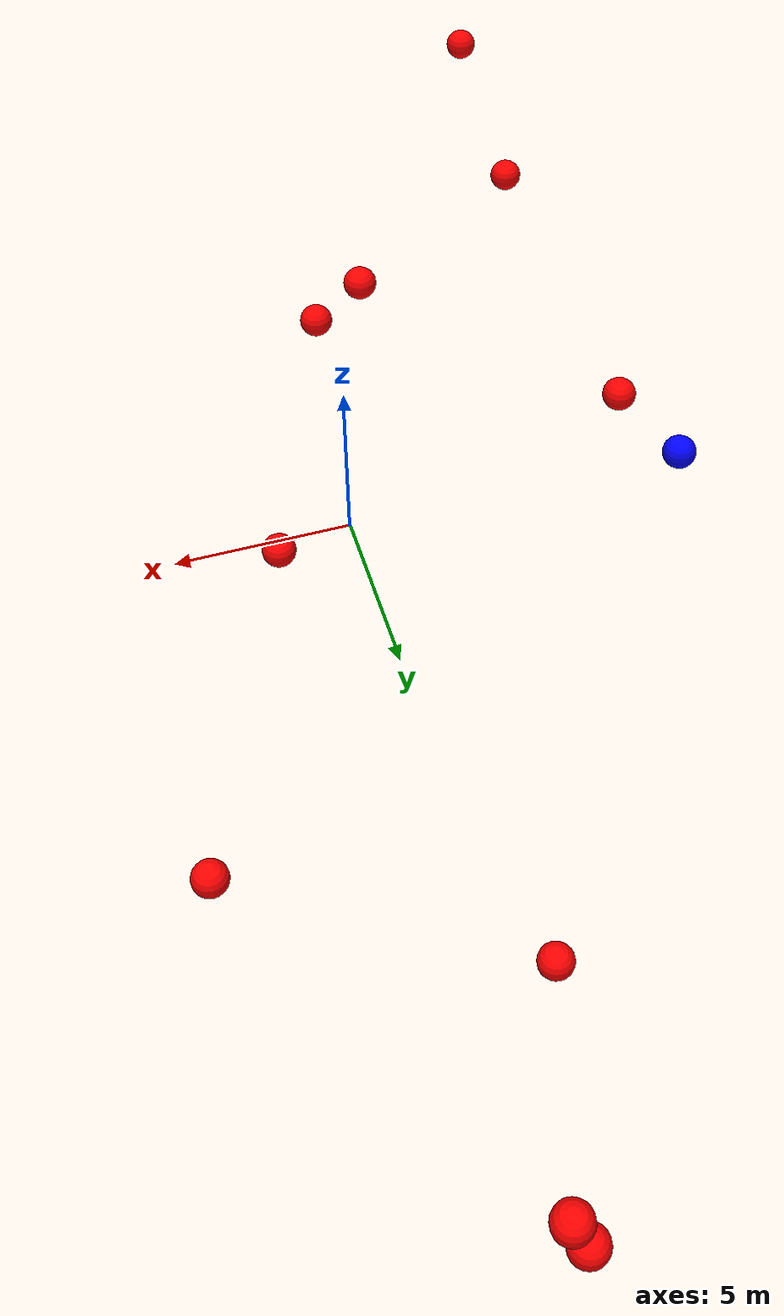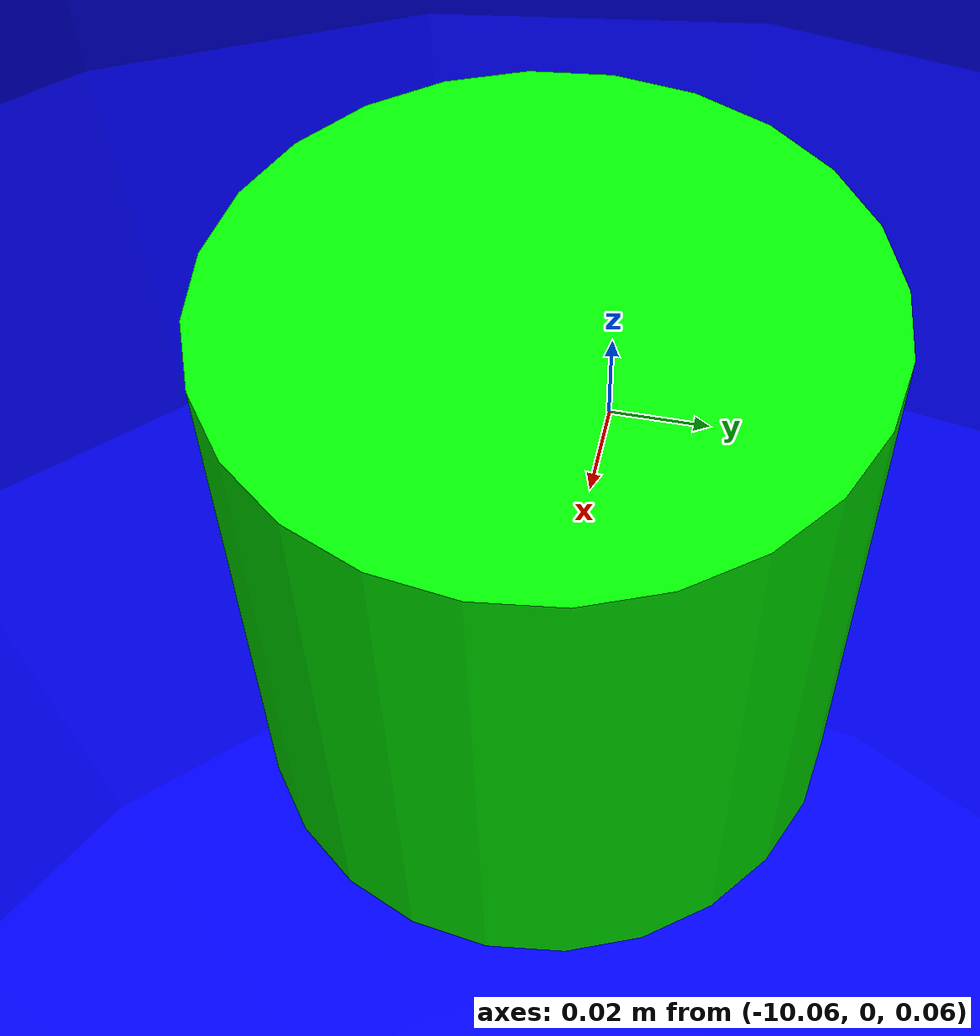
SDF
<?xml version="1.0" ?>
<sdf version="1.8">
    <world name="3d_world">
        <physics name="1ms" type="ode">
            <max_step_size>0.001</max_step_size>
            <real_time_factor>1.0</real_time_factor>
            <real_time_update_rate>1000.0</real_time_update_rate>
        </physics>
        <gravity>0 0 0</gravity>

        <plugin
            filename="gz-sim-physics-system"
            name="gz::sim::v8::systems::Physics">
        </plugin>
        <plugin
            filename="libignition-gazebo-user-commands-system.so"
            name="ignition::gazebo::systems::UserCommands">
        </plugin>
        <plugin
            filename="gz-sim-scene-broadcaster-system"
            name="gz::sim::systems::SceneBroadcaster">
        </plugin>
        <plugin
            filename="gz-sim-sensors-system"
            name="gz::sim::systems::Sensors">
            <render_engine>ogre2</render_engine>
        </plugin>

        <light type="directional" name="sun">
            <cast_shadows>true</cast_shadows>
            <pose>0 0 10 0 0 0</pose>
            <diffuse>0.8 0.8 0.8 1</diffuse>
            <specular>0.2 0.2 0.2 1</specular>
            <attenuation>
                <range>1000</range>
                <constant>0.9</constant>
                <linear>0.01</linear>
                <quadratic>0.001</quadratic>
            </attenuation>
            <direction>-0.5 0.1 -0.9</direction>
        </light>

        <!-- AGENTE -->
        <model name='agente' canonical_link='chassis'>
            <pose relative_to='world'>-10.0 0 0.0 0 0 0</pose>
            <link name='chassis'>
                <pose relative_to='__model__'>0.0 0 0.0 0 0 0</pose>
                <inertial>
                    <mass>1.14395</mass>
                    <inertia>
                        <ixx>0.095329</ixx>
                        <ixy>0</ixy>
                        <ixz>0</ixz>
                        <iyy>0.381317</iyy>
                        <iyz>0</iyz>
                        <izz>0.476646</izz>
                    </inertia>
                </inertial>
                <visual name='visual'>
                    <geometry>
                        <sphere>
                            <radius>0.5</radius>
                        </sphere>
                    </geometry>
                    <material>
                        <ambient>0.0 0.0 1.0 1</ambient>
                        <diffuse>0.0 0.0 1.0 1</diffuse>
                        <specular>0.0 0.0 1.0 1</specular>
                    </material>
                </visual>
                <collision name='collision'>
                    <geometry>
                        <sphere>
                            <radius>0.5</radius>
                        </sphere>
                    </geometry>
                </collision>
                <enable_gravity>false</enable_gravity>
            </link>

            <link name='lidar_link'>
                <pose relative_to='chassis'>0.0 0 0.1 0 0 0</pose>
                <inertial>
                    <mass>0.1</mass>
                    <inertia>
                        <ixx>0.000166667</ixx>
                        <iyy>0.000166667</iyy>
                        <izz>0.000166667</izz>
                    </inertia>
                </inertial>
                <collision name='collision'>
                    <geometry>
                        <cylinder>
                            <radius>0.05</radius>
                            <length>0.1</length>
                        </cylinder>
                    </geometry>
                </collision>
                <visual name='visual'>
                    <geometry>
                        <cylinder>
                            <radius>0.05</radius>
                            <length>0.1</length>
                        </cylinder>
                    </geometry>
                    <material>
                        <ambient>0.0 1.0 0.0 1</ambient>
                        <diffuse>0.0 1.0 0.0 1</diffuse>
                        <specular>0.0 1.0 0.0 1</specular>
                    </material>
                </visual>
                <sensor name="lidar" type="gpu_lidar">
                    <topic>scan</topic>
                    <update_rate>10</update_rate>
                    <lidar>
                        <scan>
                            <horizontal>
                                <samples>5000</samples>
                                <resolution>1</resolution>
                                <min_angle>-3.14159</min_angle>
                                <max_angle>3.14159</max_angle>
                            </horizontal>
                        </scan>
                        <range>
                            <min>0.1</min>
                            <max>10.0</max>
                            <resolution>0.01</resolution>
                        </range>
                    </lidar>
                    <visualize>true</visualize>
                    <always_on>true</always_on>
                    <update_rate>10</update_rate>
                    <pose_frame>lidar</pose_frame>
                </sensor>
                <enable_gravity>false</enable_gravity>
            </link>

            <joint name="lidar_joint" type="fixed">
                <parent>chassis</parent>
                <child>lidar_link</child>
            </joint>

            <plugin
                filename="ignition-gazebo-joint-state-publisher-system"
                name="ignition::gazebo::systems::JointStatePublisher">
            </plugin>
            <plugin
                filename="ignition-gazebo-odometry-publisher-system"
                name="ignition::gazebo::systems::OdometryPublisher">
                <dimensions>3</dimensions>
            </plugin>
            <plugin
                filename="ignition-gazebo-velocity-control-system"
                name="ignition::gazebo::systems::VelocityControl">
                <initial_linear>0.0 0 0</initial_linear>
                <initial_angular>0 0 0.0</initial_angular>
            </plugin>
            <plugin
                filename="libignition-gazebo-pose-publisher-system.so"
                name="ignition::gazebo::systems::PosePublisher">
                <topic>/agente/pose</topic>
                <frame_id>agente</frame_id>
                <update_rate>30</update_rate>
            </plugin>
        </model>

        <!-- OBSTACLE 1 -->
        <model name='obstacle_1' canonical_link='obstacle'>
            <static>false</static>
            <pose relative_to='world'>-9.40 -19.27 2.32 0 0 0</pose>
            <link name='obstacle'>
                <pose relative_to='__model__'>0.0 0 0.0 0 0 0</pose>
                <visual name='visual'>
                    <geometry>
                        <sphere>
                            <radius>0.50</radius>
                        </sphere>
                    </geometry>
                    <material>
                        <ambient>1.0 0.0 0.0 1</ambient>
                        <diffuse>1.0 0.0 0.0 1</diffuse>
                        <specular>1.0 0.0 0.0 1</specular>
                    </material>
                </visual>
                <collision name='collision'>
                    <geometry>
                        <sphere>
                            <radius>0.50</radius>
                        </sphere>
                    </geometry>
                </collision>
                <enable_gravity>false</enable_gravity>
            </link>

            <plugin
                filename="ignition-gazebo-velocity-control-system"
                name="ignition::gazebo::systems::VelocityControl">
                <initial_linear>1.11 1.65 -0.20</initial_linear>
                <initial_angular>0 0 0</initial_angular>
            </plugin>

            <plugin
                filename="ignition-gazebo-odometry-publisher-system"
                name="ignition::gazebo::systems::OdometryPublisher">
                <dimensions>3</dimensions>
            </plugin>
        </model>

        <!-- OBSTACLE 2 -->
        <model name='obstacle_2' canonical_link='obstacle'>
            <static>false</static>
            <pose relative_to='world'>0.30 19.96 -1.18 0 0 0</pose>
            <link name='obstacle'>
                <pose relative_to='__model__'>0.0 0 0.0 0 0 0</pose>
                <visual name='visual'>
                    <geometry>
                        <sphere>
                            <radius>0.50</radius>
                        </sphere>
                    </geometry>
                    <material>
                        <ambient>1.0 0.0 0.0 1</ambient>
                        <diffuse>1.0 0.0 0.0 1</diffuse>
                        <specular>1.0 0.0 0.0 1</specular>
                    </material>
                </visual>
                <collision name='collision'>
                    <geometry>
                        <sphere>
                            <radius>0.50</radius>
                        </sphere>
                    </geometry>
                </collision>
                <enable_gravity>false</enable_gravity>
            </link>

            <plugin
                filename="ignition-gazebo-velocity-control-system"
                name="ignition::gazebo::systems::VelocityControl">
                <initial_linear>0.26 -1.98 0.12</initial_linear>
                <initial_angular>0 0 0</initial_angular>
            </plugin>

            <plugin
                filename="ignition-gazebo-odometry-publisher-system"
                name="ignition::gazebo::systems::OdometryPublisher">
                <dimensions>3</dimensions>
            </plugin>
        </model>

        <!-- OBSTACLE 3 -->
        <model name='obstacle_3' canonical_link='obstacle'>
            <static>false</static>
            <pose relative_to='world'>-9.01 -13.04 1.04 0 0 0</pose>
            <link name='obstacle'>
                <pose relative_to='__model__'>0.0 0 0.0 0 0 0</pose>
                <visual name='visual'>
                    <geometry>
                        <sphere>
                            <radius>0.50</radius>
                        </sphere>
                    </geometry>
                    <material>
                        <ambient>1.0 0.0 0.0 1</ambient>
                        <diffuse>1.0 0.0 0.0 1</diffuse>
                        <specular>1.0 0.0 0.0 1</specular>
                    </material>
                </visual>
                <collision name='collision'>
                    <geometry>
                        <sphere>
                            <radius>0.50</radius>
                        </sphere>
                    </geometry>
                </collision>
                <enable_gravity>false</enable_gravity>
            </link>

            <plugin
                filename="ignition-gazebo-velocity-control-system"
                name="ignition::gazebo::systems::VelocityControl">
                <initial_linear>1.37 1.45 -0.12</initial_linear>
                <initial_angular>0 0 0</initial_angular>
            </plugin>

            <plugin
                filename="ignition-gazebo-odometry-publisher-system"
                name="ignition::gazebo::systems::OdometryPublisher">
                <dimensions>3</dimensions>
            </plugin>
        </model>

        <!-- OBSTACLE 4 -->
        <model name='obstacle_4' canonical_link='obstacle'>
            <static>false</static>
            <pose relative_to='world'>-1.17 -8.34 0.42 0 0 0</pose>
            <link name='obstacle'>
                <pose relative_to='__model__'>0.0 0 0.0 0 0 0</pose>
                <visual name='visual'>
                    <geometry>
                        <sphere>
                            <radius>0.50</radius>
                        </sphere>
                    </geometry>
                    <material>
                        <ambient>1.0 0.0 0.0 1</ambient>
                        <diffuse>1.0 0.0 0.0 1</diffuse>
                        <specular>1.0 0.0 0.0 1</specular>
                    </material>
                </visual>
                <collision name='collision'>
                    <geometry>
                        <sphere>
                            <radius>0.50</radius>
                        </sphere>
                    </geometry>
                </collision>
                <enable_gravity>false</enable_gravity>
            </link>

            <plugin
                filename="ignition-gazebo-velocity-control-system"
                name="ignition::gazebo::systems::VelocityControl">
                <initial_linear>0.34 1.97 -0.10</initial_linear>
                <initial_angular>0 0 0</initial_angular>
            </plugin>

            <plugin
                filename="ignition-gazebo-odometry-publisher-system"
                name="ignition::gazebo::systems::OdometryPublisher">
                <dimensions>3</dimensions>
            </plugin>
        </model>

        <!-- OBSTACLE 5 -->
        <model name='obstacle_5' canonical_link='obstacle'>
            <static>false</static>
            <pose relative_to='world'>-8.94 -2.25 0.60 0 0 0</pose>
            <link name='obstacle'>
                <pose relative_to='__model__'>0.0 0 0.0 0 0 0</pose>
                <visual name='visual'>
                    <geometry>
                        <sphere>
                            <radius>0.50</radius>
                        </sphere>
                    </geometry>
                    <material>
                        <ambient>1.0 0.0 0.0 1</ambient>
                        <diffuse>1.0 0.0 0.0 1</diffuse>
                        <specular>1.0 0.0 0.0 1</specular>
                    </material>
                </visual>
                <collision name='collision'>
                    <geometry>
                        <sphere>
                            <radius>0.50</radius>
                        </sphere>
                    </geometry>
                </collision>
                <enable_gravity>false</enable_gravity>
            </link>

            <plugin
                filename="ignition-gazebo-velocity-control-system"
                name="ignition::gazebo::systems::VelocityControl">
                <initial_linear>1.85 0.74 -0.20</initial_linear>
                <initial_angular>0 0 0</initial_angular>
            </plugin>

            <plugin
                filename="ignition-gazebo-odometry-publisher-system"
                name="ignition::gazebo::systems::OdometryPublisher">
                <dimensions>3</dimensions>
            </plugin>
        </model>

        <!-- OBSTACLE 6 -->
        <model name='obstacle_6' canonical_link='obstacle'>
            <static>false</static>
            <pose relative_to='world'>-1.90 12.35 -3.96 0 0 0</pose>
            <link name='obstacle'>
                <pose relative_to='__model__'>0.0 0 0.0 0 0 0</pose>
                <visual name='visual'>
                    <geometry>
                        <sphere>
                            <radius>0.50</radius>
                        </sphere>
                    </geometry>
                    <material>
                        <ambient>1.0 0.0 0.0 1</ambient>
                        <diffuse>1.0 0.0 0.0 1</diffuse>
                        <specular>1.0 0.0 0.0 1</specular>
                    </material>
                </visual>
                <collision name='collision'>
                    <geometry>
                        <sphere>
                            <radius>0.50</radius>
                        </sphere>
                    </geometry>
                </collision>
                <enable_gravity>false</enable_gravity>
            </link>

            <plugin
                filename="ignition-gazebo-velocity-control-system"
                name="ignition::gazebo::systems::VelocityControl">
                <initial_linear>0.54 -1.83 0.59</initial_linear>
                <initial_angular>0 0 0</initial_angular>
            </plugin>

            <plugin
                filename="ignition-gazebo-odometry-publisher-system"
                name="ignition::gazebo::systems::OdometryPublisher">
                <dimensions>3</dimensions>
            </plugin>
        </model>

        <!-- OBSTACLE 7 -->
        <model name='obstacle_7' canonical_link='obstacle'>
            <static>false</static>
            <pose relative_to='world'>6.03 8.76 -1.85 0 0 0</pose>
            <link name='obstacle'>
                <pose relative_to='__model__'>0.0 0 0.0 0 0 0</pose>
                <visual name='visual'>
                    <geometry>
                        <sphere>
                            <radius>0.50</radius>
                        </sphere>
                    </geometry>
                    <material>
                        <ambient>1.0 0.0 0.0 1</ambient>
                        <diffuse>1.0 0.0 0.0 1</diffuse>
                        <specular>1.0 0.0 0.0 1</specular>
                    </material>
                </visual>
                <collision name='collision'>
                    <geometry>
                        <sphere>
                            <radius>0.50</radius>
                        </sphere>
                    </geometry>
                </collision>
                <enable_gravity>false</enable_gravity>
            </link>

            <plugin
                filename="ignition-gazebo-velocity-control-system"
                name="ignition::gazebo::systems::VelocityControl">
                <initial_linear>-0.84 -1.78 0.38</initial_linear>
                <initial_angular>0 0 0</initial_angular>
            </plugin>

            <plugin
                filename="ignition-gazebo-odometry-publisher-system"
                name="ignition::gazebo::systems::OdometryPublisher">
                <dimensions>3</dimensions>
            </plugin>
        </model>

        <!-- OBSTACLE 8 -->
        <model name='obstacle_8' canonical_link='obstacle'>
            <static>false</static>
            <pose relative_to='world'>-2.47 -7.71 2.11 0 0 0</pose>
            <link name='obstacle'>
                <pose relative_to='__model__'>0.0 0 0.0 0 0 0</pose>
                <visual name='visual'>
                    <geometry>
                        <sphere>
                            <radius>0.50</radius>
                        </sphere>
                    </geometry>
                    <material>
                        <ambient>1.0 0.0 0.0 1</ambient>
                        <diffuse>1.0 0.0 0.0 1</diffuse>
                        <specular>1.0 0.0 0.0 1</specular>
                    </material>
                </visual>
                <collision name='collision'>
                    <geometry>
                        <sphere>
                            <radius>0.50</radius>
                        </sphere>
                    </geometry>
                </collision>
                <enable_gravity>false</enable_gravity>
            </link>

            <plugin
                filename="ignition-gazebo-velocity-control-system"
                name="ignition::gazebo::systems::VelocityControl">
                <initial_linear>0.08 1.93 -0.53</initial_linear>
                <initial_angular>0 0 0</initial_angular>
            </plugin>

            <plugin
                filename="ignition-gazebo-odometry-publisher-system"
                name="ignition::gazebo::systems::OdometryPublisher">
                <dimensions>3</dimensions>
            </plugin>
        </model>

        <!-- OBSTACLE 9 -->
        <model name='obstacle_9' canonical_link='obstacle'>
            <static>false</static>
            <pose relative_to='world'>0.63 19.72 -0.27 0 0 0</pose>
            <link name='obstacle'>
                <pose relative_to='__model__'>0.0 0 0.0 0 0 0</pose>
                <visual name='visual'>
                    <geometry>
                        <sphere>
                            <radius>0.50</radius>
                        </sphere>
                    </geometry>
                    <material>
                        <ambient>1.0 0.0 0.0 1</ambient>
                        <diffuse>1.0 0.0 0.0 1</diffuse>
                        <specular>1.0 0.0 0.0 1</specular>
                    </material>
                </visual>
                <collision name='collision'>
                    <geometry>
                        <sphere>
                            <radius>0.50</radius>
                        </sphere>
                    </geometry>
                </collision>
                <enable_gravity>false</enable_gravity>
            </link>

            <plugin
                filename="ignition-gazebo-velocity-control-system"
                name="ignition::gazebo::systems::VelocityControl">
                <initial_linear>-0.13 -2.00 0.03</initial_linear>
                <initial_angular>0 0 0</initial_angular>
            </plugin>

            <plugin
                filename="ignition-gazebo-odometry-publisher-system"
                name="ignition::gazebo::systems::OdometryPublisher">
                <dimensions>3</dimensions>
            </plugin>
        </model>

        <!-- OBSTACLE 10 -->
        <model name='obstacle_10' canonical_link='obstacle'>
            <static>false</static>
            <pose relative_to='world'>1.91 -0.99 -1.49 0 0 0</pose>
            <link name='obstacle'>
                <pose relative_to='__model__'>0.0 0 0.0 0 0 0</pose>
                <visual name='visual'>
                    <geometry>
                        <sphere>
                            <radius>0.50</radius>
                        </sphere>
                    </geometry>
                    <material>
                        <ambient>1.0 0.0 0.0 1</ambient>
                        <diffuse>1.0 0.0 0.0 1</diffuse>
                        <specular>1.0 0.0 0.0 1</specular>
                    </material>
                </visual>
                <collision name='collision'>
                    <geometry>
                        <sphere>
                            <radius>0.50</radius>
                        </sphere>
                    </geometry>
                </collision>
                <enable_gravity>false</enable_gravity>
            </link>

            <plugin
                filename="ignition-gazebo-velocity-control-system"
                name="ignition::gazebo::systems::VelocityControl">
                <initial_linear>0.10 0.20 0.30</initial_linear>
                <initial_angular>0 0 0</initial_angular>
            </plugin>

            <plugin
                filename="ignition-gazebo-odometry-publisher-system"
                name="ignition::gazebo::systems::OdometryPublisher">
                <dimensions>3</dimensions>
            </plugin>
        </model>

    </world>
</sdf>
